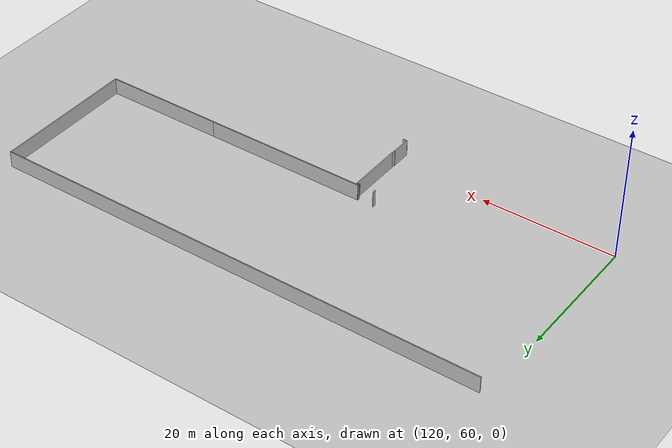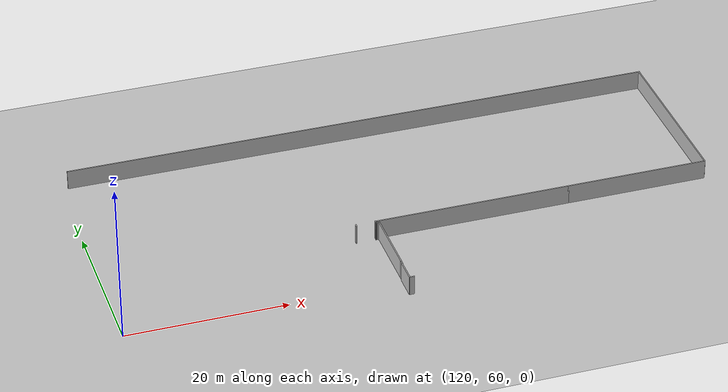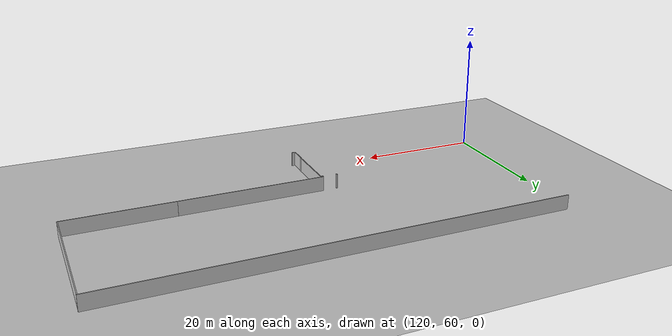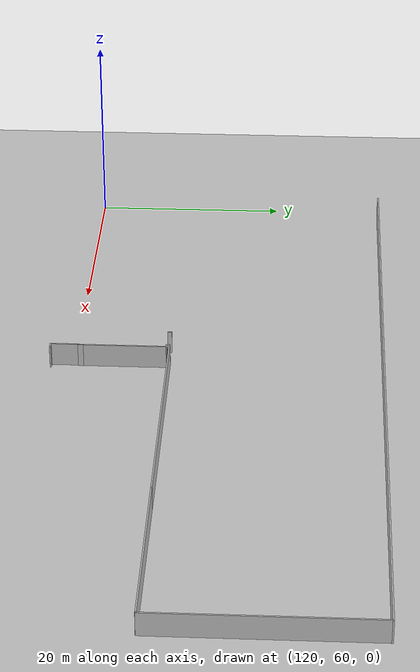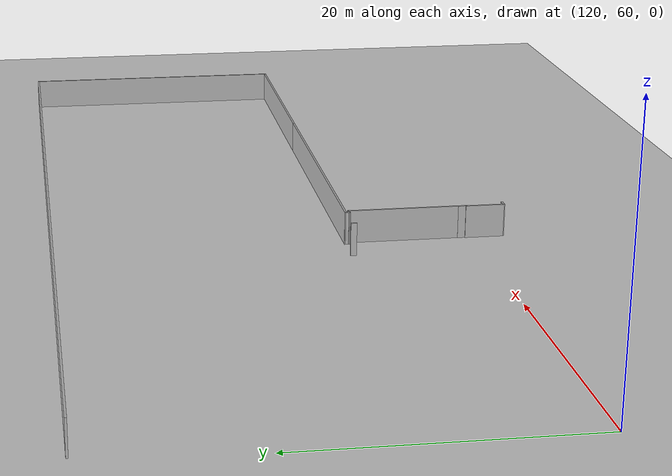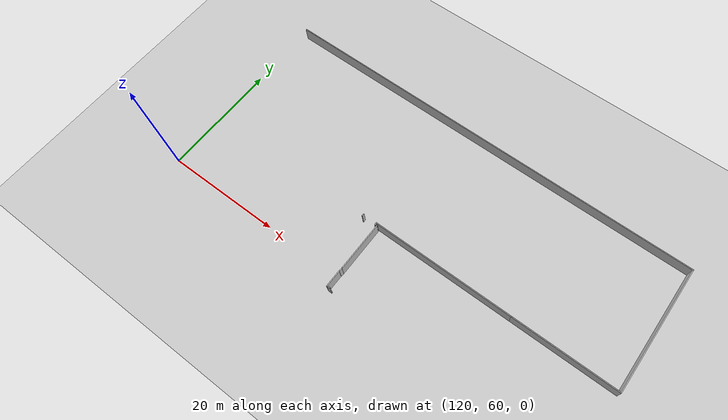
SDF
<sdf version="1.6">
 <world name="default">
  <model name="ground_plane">
   <static>1</static>
   <link name="link">
    <collision name="collision">
     <geometry><plane><normal>0 0 1</normal><size>200 100</size></plane></geometry>
     <surface><friction><ode><mu>100</mu><mu2>50</mu2></ode></friction></surface>
    </collision>
    <visual name="visual">
     <cast_shadows>0</cast_shadows>
     <geometry><plane><normal>0 0 1</normal><size>200 100</size></plane></geometry>
     <material>
      <script><uri>file://media/materials/scripts/gazebo.material</uri><name>Gazebo/Grey</name></script>
     </material>
    </visual>
   </link>
  </model>
  <model name="vgke_production">
   <link name="Wall_315">
    <pose>52.513 22.2239 0 0 -0 1.55764</pose>
    <visual name="Wall_315_Visual">
     <pose>0 0 1.25 0 -0 0</pose>
     <geometry><box><size>0.45103 0.15 2.5</size></box></geometry>
    </visual>
    <collision name="Wall_315_Collision">
     <pose>0 0 1.25 0 -0 0</pose>
     <geometry><box><size>0.45103 0.15 2.5</size></box></geometry>
    </collision>
    <inertial>
     <inertia><ixx>1</ixx><ixy>0</ixy><ixz>0</ixz><iyy>1</iyy><iyz>0</iyz><izz>1</izz></inertia>
     <mass>1</mass>
    </inertial>
   </link>
   <link name="Wall_318">
    <pose>55.0021 22.2219 0 0 0 -1.59857</pose>
    <visual name="Wall_318_Visual">
     <pose>0 0 1.25 0 -0 0</pose>
     <geometry><box><size>0.435161 0.15 2.5</size></box></geometry>
    </visual>
    <collision name="Wall_318_Collision">
     <pose>0 0 1.25 0 -0 0</pose>
     <geometry><box><size>0.435161 0.15 2.5</size></box></geometry>
    </collision>
    <inertial>
     <inertia><ixx>1</ixx><ixy>0</ixy><ixz>0</ixz><iyy>1</iyy><iyz>0</iyz><izz>1</izz></inertia>
     <mass>1</mass>
    </inertial>
   </link>
   <link name="Wall_319">
    <pose>55.1731 22.0867 0 0 -0 0.042176</pose>
    <visual name="Wall_319_Visual">
     <pose>0 0 1.25 0 -0 0</pose>
     <geometry><box><size>0.5 0.15 2.5</size></box></geometry>
    </visual>
    <collision name="Wall_319_Collision">
     <pose>0 0 1.25 0 -0 0</pose>
     <geometry><box><size>0.5 0.15 2.5</size></box></geometry>
    </collision>
    <inertial>
     <inertia><ixx>1</ixx><ixy>0</ixy><ixz>0</ixz><iyy>1</iyy><iyz>0</iyz><izz>1</izz></inertia>
     <mass>1</mass>
    </inertial>
   </link>
   <link name="Wall_320">
    <pose>55.3483 17.8713 0 0 0 -1.57076</pose>
    <visual name="Wall_320_Visual">
     <pose>0 0 1.25 0 -0 0</pose>
     <geometry><box><size>8.58868 0.15 2.5</size></box></geometry>
    </visual>
    <collision name="Wall_320_Collision">
     <pose>0 0 1.25 0 -0 0</pose>
     <geometry><box><size>8.58868 0.15 2.5</size></box></geometry>
    </collision>
    <inertial>
     <inertia><ixx>1</ixx><ixy>0</ixy><ixz>0</ixz><iyy>1</iyy><iyz>0</iyz><izz>1</izz></inertia>
     <mass>1</mass>
    </inertial>
   </link>
   <link name="Wall_327">
    <pose>55.3423 13.3694 0 0 0 -1.5708</pose>
    <visual name="Wall_327_Visual">
     <pose>0 0 1.25 0 -0 0</pose>
     <geometry><box><size>0.721897 0.15 2.5</size></box></geometry>
    </visual>
    <collision name="Wall_327_Collision">
     <pose>0 0 1.25 0 -0 0</pose>
     <geometry><box><size>0.721897 0.15 2.5</size></box></geometry>
    </collision>
    <inertial>
     <inertia><ixx>1</ixx><ixy>0</ixy><ixz>0</ixz><iyy>1</iyy><iyz>0</iyz><izz>1</izz></inertia>
     <mass>1</mass>
    </inertial>
   </link>
   <link name="Wall_330">
    <pose>55.2875 11.6585 0 0 0 -1.5708</pose>
    <visual name="Wall_330_Visual">
     <pose>0 0 1.25 0 -0 0</pose>
     <geometry><box><size>3 0.15 2.5</size></box></geometry>
    </visual>
    <collision name="Wall_330_Collision">
     <pose>0 0 1.25 0 -0 0</pose>
     <geometry><box><size>3 0.15 2.5</size></box></geometry>
    </collision>
    <inertial>
     <inertia><ixx>1</ixx><ixy>0</ixy><ixz>0</ixz><iyy>1</iyy><iyz>0</iyz><izz>1</izz></inertia>
     <mass>1</mass>
    </inertial>
   </link>
   <link name="Wall_332">
    <pose>55.5571 10.2328 0 0 0 -0.002425</pose>
    <visual name="Wall_332_Visual">
     <pose>0 0 1.25 0 -0 0</pose>
     <geometry><box><size>0.689147 0.15 2.5</size></box></geometry>
    </visual>
    <collision name="Wall_332_Collision">
     <pose>0 0 1.25 0 -0 0</pose>
     <geometry><box><size>0.689147 0.15 2.5</size></box></geometry>
    </collision>
    <inertial>
     <inertia><ixx>1</ixx><ixy>0</ixy><ixz>0</ixz><iyy>1</iyy><iyz>0</iyz><izz>1</izz></inertia>
     <mass>1</mass>
    </inertial>
   </link>
   <link name="Wall_334_clone">
    <pose>97.4815 33.2577 0 0 0 -1.5708</pose>
    <visual name="Wall_334_Visual">
     <pose>0 0 1.25 0 -0 0</pose>
     <geometry><box><size>21.9088 0.15 2.5</size></box></geometry>
     <material><shader type="pixel"/></material>
    </visual>
    <collision name="Wall_334_Collision">
     <pose>0 0 1.25 0 -0 0</pose>
     <geometry><box><size>21.9088 0.15 2.5</size></box></geometry>
    </collision>
    <inertial>
     <inertia><ixx>1</ixx><ixy>0</ixy><ixz>0</ixz><iyy>1</iyy><iyz>0</iyz><izz>1</izz></inertia>
     <mass>1</mass>
    </inertial>
   </link>
   <link name="Wall_561">
    <pose>59.9572 44.1461 0 0 -0 3.14159</pose>
    <visual name="Wall_561_Visual">
     <pose>0 0 1.25 0 -0 0</pose>
     <geometry><box><size>75.25 0.15 2.5</size></box></geometry>
    </visual>
    <collision name="Wall_561_Collision">
     <pose>0 0 1.25 0 -0 0</pose>
     <geometry><box><size>75.25 0.15 2.5</size></box></geometry>
    </collision>
    <inertial>
     <inertia><ixx>1</ixx><ixy>0</ixy><ixz>0</ixz><iyy>1</iyy><iyz>0</iyz><izz>1</izz></inertia>
     <mass>1</mass>
    </inertial>
   </link>
   <link name="Wall_642">
    <pose>67.306 22.3644 0 0 -0 0</pose>
    <visual name="Wall_642_Visual">
     <pose>0 0 1.25 0 -0 0</pose>
     <geometry><box><size>24.75 0.15 2.5</size></box></geometry>
    </visual>
    <collision name="Wall_642_Collision">
     <pose>0 0 1.25 0 -0 0</pose>
     <geometry><box><size>24.75 0.15 2.5</size></box></geometry>
    </collision>
    <inertial>
     <inertia><ixx>1</ixx><ixy>0</ixy><ixz>0</ixz><iyy>1</iyy><iyz>0</iyz><izz>1</izz></inertia>
     <mass>1</mass>
    </inertial>
   </link>
   <link name="Wall_644">
    <pose>88.531 22.3644 0 0 -0 0</pose>
    <visual name="Wall_644_Visual">
     <pose>0 0 1.25 0 -0 0</pose>
     <geometry><box><size>18 0.15 2.5</size></box></geometry>
    </visual>
    <collision name="Wall_644_Collision">
     <pose>0 0 1.25 0 -0 0</pose>
     <geometry><box><size>18 0.15 2.5</size></box></geometry>
    </collision>
    <inertial>
     <inertia><ixx>1</ixx><ixy>0</ixy><ixz>0</ixz><iyy>1</iyy><iyz>0</iyz><izz>1</izz></inertia>
     <mass>1</mass>
    </inertial>
   </link>
   <pose>98.6 47.426 0.01 0 0 0</pose>
  </model>
 </world>
</sdf>
